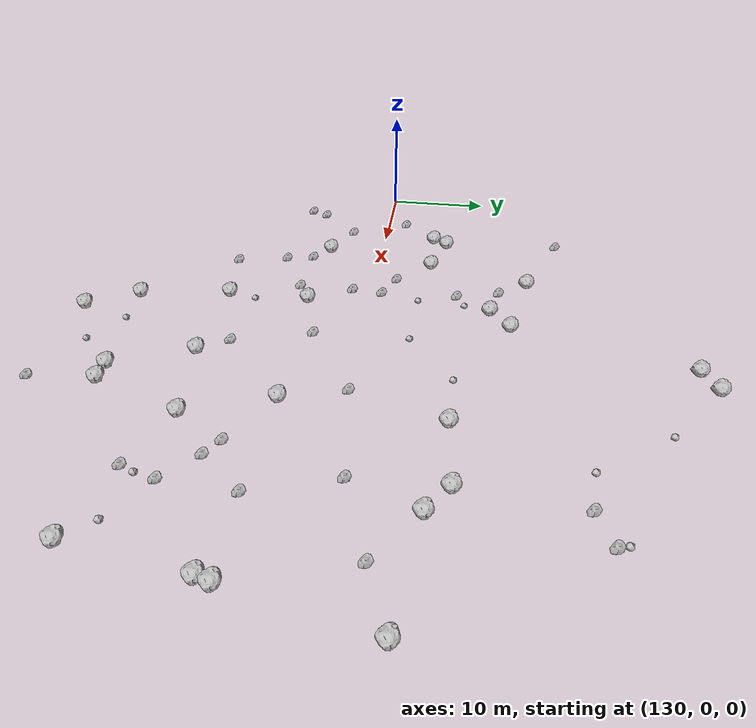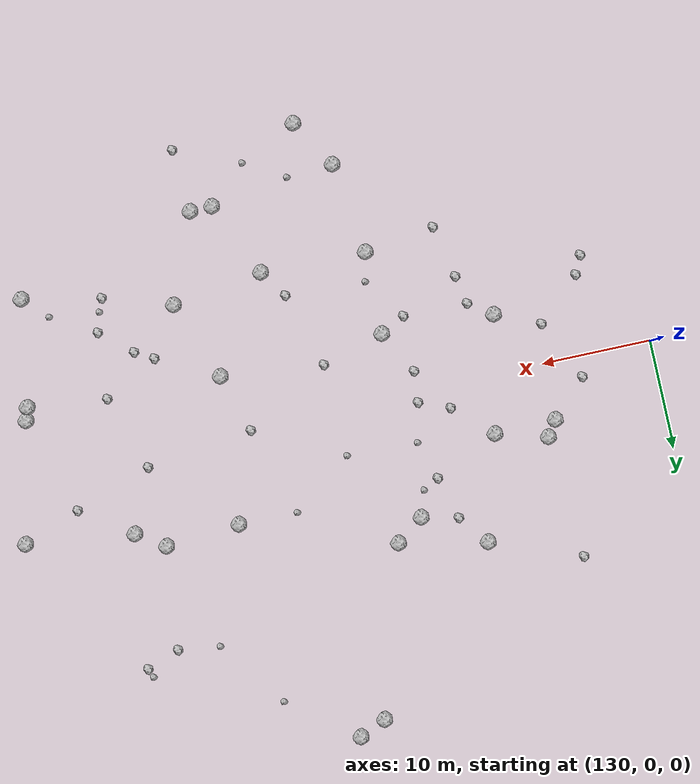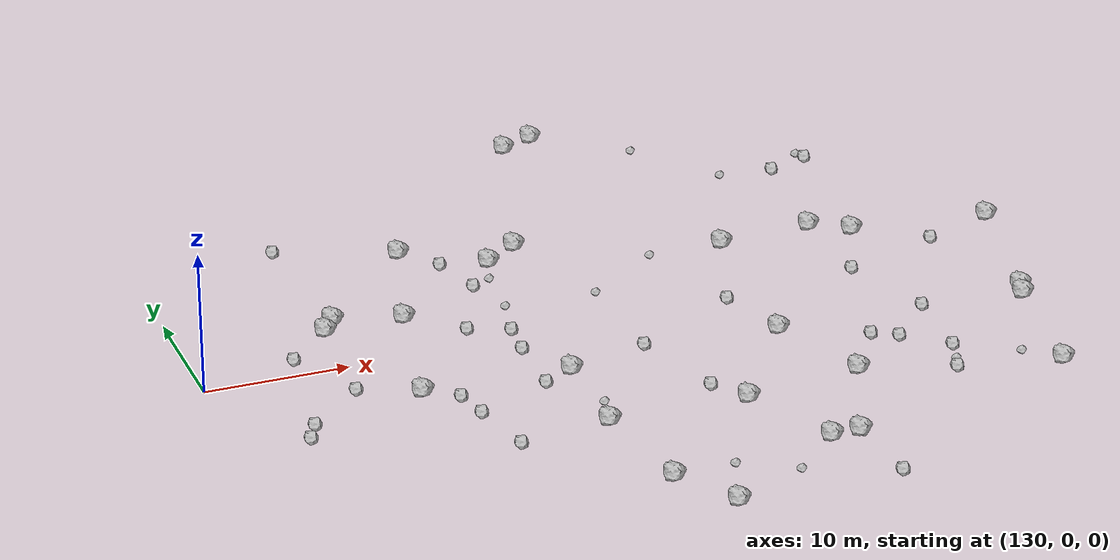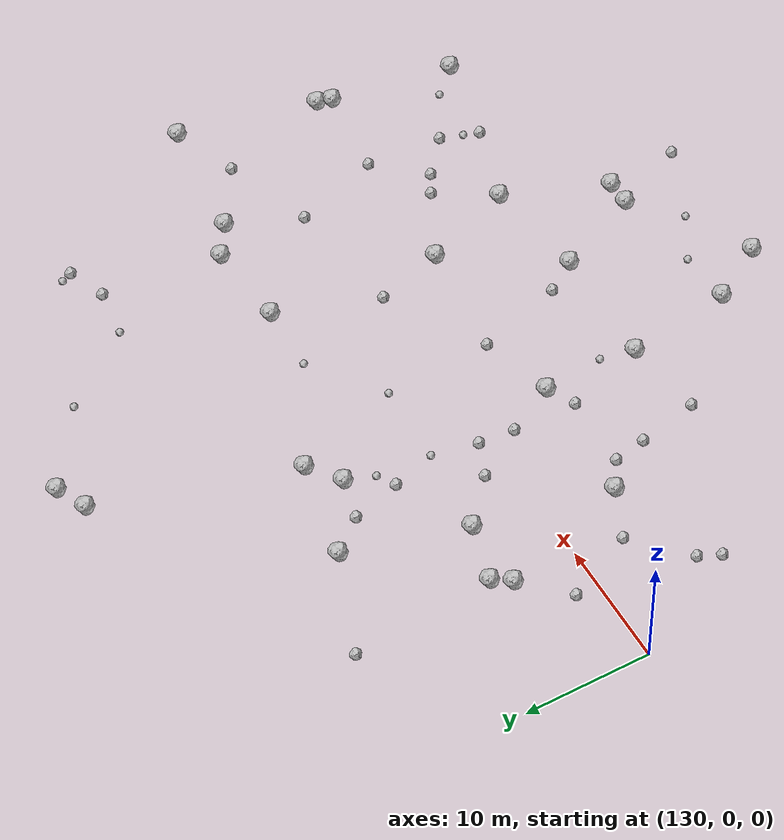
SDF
<sdf version="1.6">
 <world name="default">
  <include><uri>model://sun</uri></include>
  <model name="rock1_4_2">
   <include><uri>model://rock1</uri><pose>171.50922840579705 -12.329044898386197 0.5 0 0 0</pose></include>
  </model>
  <model name="rock1_4_3">
   <include><uri>model://rock1</uri><pose>145.5835604486556 5.233210397495149 0.5 0 0 0</pose></include>
  </model>
  <model name="rock1_4_4">
   <include><uri>model://rock1</uri><pose>153.7155310831395 11.203601906615845 0.5 0 0 0</pose></include>
  </model>
  <model name="rock1_4_5">
   <include><uri>model://rock1</uri><pose>163.18142880930898 -13.527054168286991 0.5 0 0 0</pose></include>
  </model>
  <model name="rock1_4_6">
   <include><uri>model://rock1</uri><pose>153.65971112911797 -5.778559141012767 0.5 0 0 0</pose></include>
  </model>
  <model name="rock1_4_7">
   <include><uri>model://rock1</uri><pose>168.74776697579566 -5.114710381544992 0.5 0 0 0</pose></include>
  </model>
  <model name="rock1_4_8">
   <include><uri>model://rock1</uri><pose>154.78051974025553 -21.708023972217525 0.5 0 0 0</pose></include>
  </model>
  <model name="rock1_4_9">
   <include><uri>model://rock1</uri><pose>156.20626608778622 13.040332856845438 0.5 0 0 0</pose></include>
  </model>
  <model name="rock1_4_10">
   <include><uri>model://rock1</uri><pose>148.25507933392888 14.658956389158512 0.5 0 0 0</pose></include>
  </model>
  <model name="rock1_4_11">
   <include><uri>model://rock1</uri><pose>143.40812045465168 -5.340349505233579 0.5 0 0 0</pose></include>
  </model>
  <model name="rock1_4_12">
   <include><uri>model://rock1</uri><pose>176.7628911097676 8.874332273134655 0.5 0 0 0</pose></include>
  </model>
  <model name="rock1_4_13">
   <include><uri>model://rock1</uri><pose>186.42183979314632 -6.072617733594502 0.5 0 0 0</pose></include>
  </model>
  <model name="rock1_4_14">
   <include><uri>model://rock1</uri><pose>169.9632822580096 8.321031224761462 0.5 0 0 0</pose></include>
  </model>
  <model name="rock1_4_15">
   <include><uri>model://rock1</uri><pose>168.25475501703656 -20.28055781469969 0.5 0 0 0</pose></include>
  </model>
  <model name="rock1_4_16">
   <include><uri>model://rock1</uri><pose>140.9205933670447 6.534783954088503 0.5 0 0 0</pose></include>
  </model>
  <model name="rock1_4_17">
   <include><uri>model://rock1</uri><pose>139.97849983038043 5.139552493867534 0.5 0 0 0</pose></include>
  </model>
  <model name="rock1_4_18">
   <include><uri>model://rock1</uri><pose>153.5435872397856 -13.327690577349816 0.5 0 0 0</pose></include>
  </model>
  <model name="rock1_4_19">
   <include><uri>model://rock1</uri><pose>179.34322628981067 7.174379963962679 0.5 0 0 0</pose></include>
  </model>
  <model name="rock1_4_20">
   <include><uri>model://rock1</uri><pose>184.87512639258958 -15.753821073464822 0.5 0 0 0</pose></include>
  </model>
  <model name="rock1_4_21">
   <include><uri>model://rock1</uri><pose>163.25459090689958 29.448156089622643 0.5 0 0 0</pose></include>
  </model>
  <model name="rock1_4_22">
   <include><uri>model://rock1</uri><pose>189.19173185422727 5.987822634288307 0.5 0 0 0</pose></include>
  </model>
  <model name="rock1_4_23">
   <include><uri>model://rock1</uri><pose>186.77863659822526 -4.917135327235297 0.5 0 0 0</pose></include>
  </model>
  <model name="rock1_4_24">
   <include><uri>model://rock1</uri><pose>160.8320576786304 28.37095445442295 0.5 0 0 0</pose></include>
  </model>
  <model name="rock1_4_25">
   <include><uri>model://rock1</uri><pose>166.23234793531432 -20.30959464807561 0.5 0 0 0</pose></include>
  </model>
  <model name="rock1_4_26">
   <include><uri>model://rock1</uri><pose>157.46007188391332 -26.086943970774986 0.5 0 0 0</pose></include>
  </model>
  <model name="rock2_4_0">
   <include><uri>model://rock2</uri><pose>135.36101482006293 -7.269406096042772 0.3 0 0 0</pose></include>
  </model>
  <model name="rock2_4_1">
   <include><uri>model://rock2</uri><pose>180.75852956896244 19.418948374202735 0.3 0 0 0</pose></include>
  </model>
  <model name="rock2_4_2">
   <include><uri>model://rock2</uri><pose>136.72670486497327 1.892807096154442 0.3 0 0 0</pose></include>
  </model>
  <model name="rock2_4_3">
   <include><uri>model://rock2</uri><pose>167.09130470365665 0.2677790933025612 0.3 0 0 0</pose></include>
  </model>
  <model name="rock2_4_4">
   <include><uri>model://rock2</uri><pose>148.97630619210594 2.1322295187773648 0.3 0 0 0</pose></include>
  </model>
  <model name="rock2_4_5">
   <include><uri>model://rock2</uri><pose>179.17208943062442 -5.272215684365925 0.3 0 0 0</pose></include>
  </model>
  <model name="rock2_4_6">
   <include><uri>model://rock2</uri><pose>147.0829664180381 -14.224342153571953 0.3 0 0 0</pose></include>
  </model>
  <model name="rock2_4_7">
   <include><uri>model://rock2</uri><pose>134.5861456287701 -8.92007808138532 0.3 0 0 0</pose></include>
  </model>
  <model name="rock2_4_8">
   <include><uri>model://rock2</uri><pose>139.33219365925567 -3.5662346092499675 0.3 0 0 0</pose></include>
  </model>
  <model name="rock2_4_9">
   <include><uri>model://rock2</uri><pose>151.51088038410455 -1.8271455774432113 0.3 0 0 0</pose></include>
  </model>
  <model name="rock2_4_10">
   <include><uri>model://rock2</uri><pose>168.65031348923168 -26.03897737377624 0.3 0 0 0</pose></include>
  </model>
  <model name="rock2_4_11">
   <include><uri>model://rock2</uri><pose>150.36095038955955 12.005767297958812 0.3 0 0 0</pose></include>
  </model>
  <model name="rock2_4_12">
   <include><uri>model://rock2</uri><pose>177.7531844015603 18.290536881731228 0.3 0 0 0</pose></include>
  </model>
  <model name="rock2_4_13">
   <include><uri>model://rock2</uri><pose>145.51500635127755 -6.809376123224435 0.3 0 0 0</pose></include>
  </model>
  <model name="rock2_4_14">
   <include><uri>model://rock2</uri><pose>176.88567305166686 1.5580602693123708 0.3 0 0 0</pose></include>
  </model>
  <model name="rock2_4_15">
   <include><uri>model://rock2</uri><pose>151.39679604073166 -6.917778028299651 0.3 0 0 0</pose></include>
  </model>
  <model name="rock2_4_16">
   <include><uri>model://rock2</uri><pose>175.90962179983777 -8.898234635548949 0.3 0 0 0</pose></include>
  </model>
  <model name="rock2_4_17">
   <include><uri>model://rock2</uri><pose>177.73857623776556 -14.301829605254245 0.3 0 0 0</pose></include>
  </model>
  <model name="rock2_4_18">
   <include><uri>model://rock2</uri><pose>159.36591387792978 -4.135773004388316 0.3 0 0 0</pose></include>
  </model>
  <model name="rock2_4_19">
   <include><uri>model://rock2</uri><pose>161.44416169315303 -11.010813167820086 0.3 0 0 0</pose></include>
  </model>
  <model name="rock2_4_20">
   <include><uri>model://rock2</uri><pose>146.04245050922722 -9.424566103099078 0.3 0 0 0</pose></include>
  </model>
  <model name="rock2_4_21">
   <include><uri>model://rock2</uri><pose>151.7544934038007 1.010345133594246 0.3 0 0 0</pose></include>
  </model>
  <model name="rock2_4_22">
   <include><uri>model://rock2</uri><pose>151.466845485268 8.090231532855952 0.3 0 0 0</pose></include>
  </model>
  <model name="rock2_4_23">
   <include><uri>model://rock2</uri><pose>174.23921798211788 -7.952167094272802 0.3 0 0 0</pose></include>
  </model>
  <model name="rock2_4_24">
   <include><uri>model://rock2</uri><pose>140.03275032847145 17.826258681380267 0.3 0 0 0</pose></include>
  </model>
  <model name="rock2_4_25">
   <include><uri>model://rock2</uri><pose>183.94791032529827 4.041375209912708 0.3 0 0 0</pose></include>
  </model>
  <model name="rock2_4_26">
   <include><uri>model://rock2</uri><pose>178.74431052099987 -11.319862920075042 0.3 0 0 0</pose></include>
  </model>
  <model name="rock3_4_0">
   <include><uri>model://rock3</uri><pose>159.0442936311962 4.330532464996907 0.2 0 0 0</pose></include>
  </model>
  <model name="rock3_4_1">
   <include><uri>model://rock3</uri><pose>162.70189037258177 -23.606149115766865 0.2 0 0 0</pose></include>
  </model>
  <model name="rock3_4_2">
   <include><uri>model://rock3</uri><pose>152.55385045914488 4.52484110226829 0.2 0 0 0</pose></include>
  </model>
  <model name="rock3_4_3">
   <include><uri>model://rock3</uri><pose>180.4229164624446 20.211764214851698 0.2 0 0 0</pose></include>
  </model>
  <model name="rock3_4_4">
   <include><uri>model://rock3</uri><pose>169.35091505875891 24.87804570548348 0.2 0 0 0</pose></include>
  </model>
  <model name="rock3_4_5">
   <include><uri>model://rock3</uri><pose>168.31958061091046 -20.535905489014578 0.2 0 0 0</pose></include>
  </model>
  <model name="rock3_4_6">
   <include><uri>model://rock3</uri><pose>159.013542760746 -21.471661138622263 0.2 0 0 0</pose></include>
  </model>
  <model name="rock3_4_7">
   <include><uri>model://rock3</uri><pose>178.20277941614415 -13.157272702200878 0.2 0 0 0</pose></include>
  </model>
  <model name="rock3_4_8">
   <include><uri>model://rock3</uri><pose>164.54107030699316 8.395764278732393 0.2 0 0 0</pose></include>
  </model>
  <model name="rock3_4_9">
   <include><uri>model://rock3</uri><pose>182.7422125016002 -13.679612030085984 0.2 0 0 0</pose></include>
  </model>
  <model name="rock3_4_10">
   <include><uri>model://rock3</uri><pose>152.89402258427384 8.85009346084724 0.2 0 0 0</pose></include>
  </model>
  <model name="rock3_4_11">
   <include><uri>model://rock3</uri><pose>173.930113727409 18.765060607404834 0.2 0 0 0</pose></include>
  </model>
  <model name="rock3_4_12">
   <include><uri>model://rock3</uri><pose>154.08595735538682 -10.728879587157948 0.2 0 0 0</pose></include>
  </model>
 </world>
</sdf>
